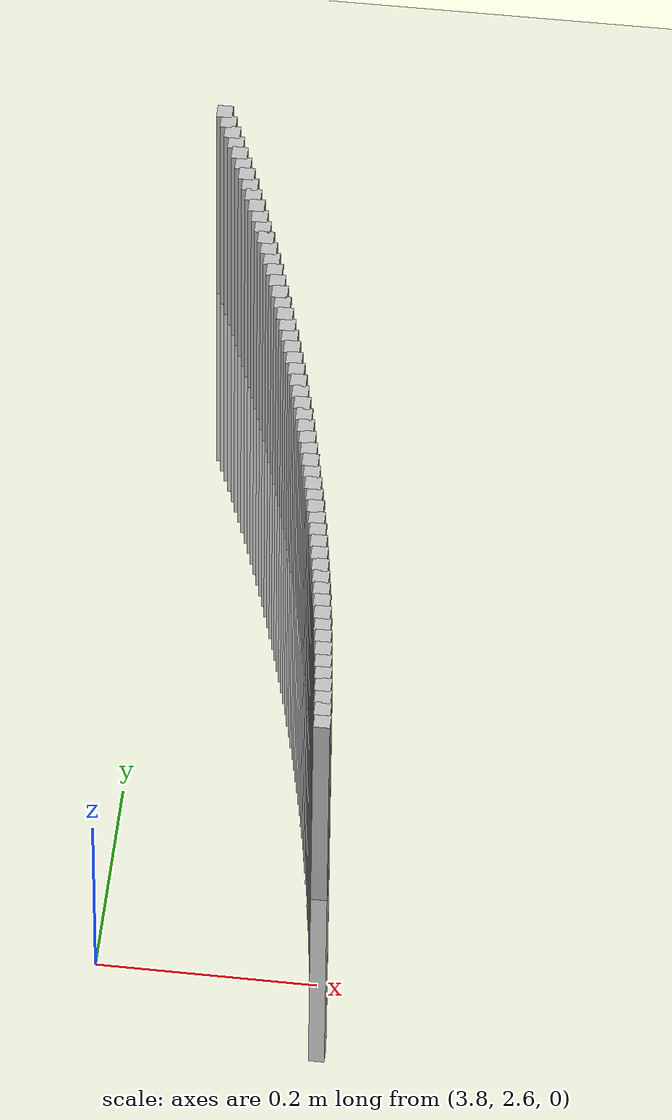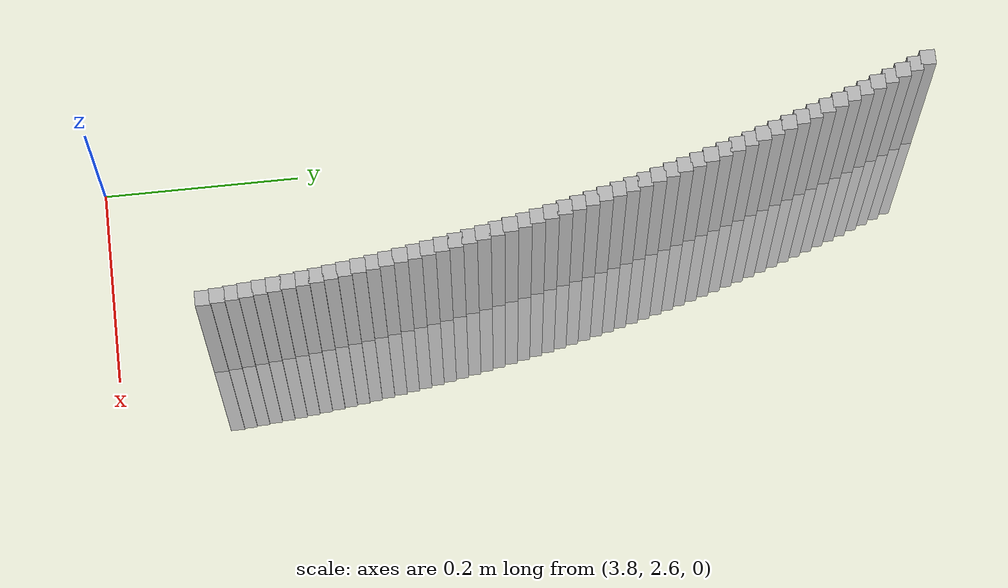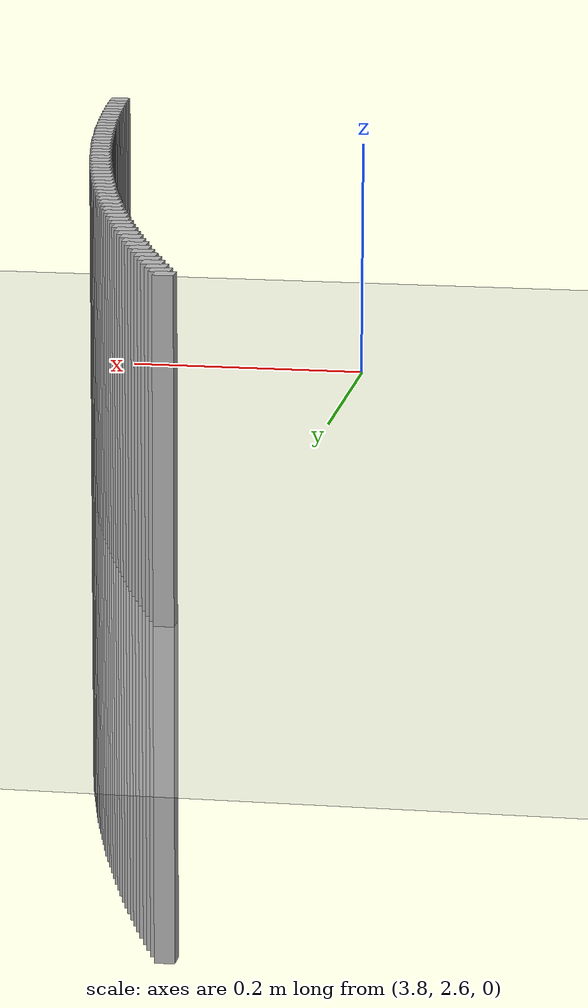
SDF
<sdf version="1.6">
 <world name="base">
  <include><uri>model://sun</uri></include>
  <include><uri>model://ground_plane</uri></include>
  <model name="k404">
   <link name="222_link">
    <collision name="collision_222">
     <pose>3.8198885971332732 3.431727909258391 0 0 -0 0</pose>
     <geometry><box><size>0.015 0.015 0.50</size></box></geometry>
    </collision>
    <visual name="visual_222">
     <pose>3.8198885971332732 3.431727909258391 0 0 -0 0</pose>
     <geometry><box><size>0.015 0.015 0.50</size></box></geometry>
    </visual>
   </link>
   <link name="223_link">
    <collision name="collision_223">
     <pose>3.825029036011102 3.418825327091764 0 0 -0 0</pose>
     <geometry><box><size>0.015 0.015 0.50</size></box></geometry>
    </collision>
    <visual name="visual_223">
     <pose>3.825029036011102 3.418825327091764 0 0 -0 0</pose>
     <geometry><box><size>0.015 0.015 0.50</size></box></geometry>
    </visual>
   </link>
   <link name="224_link">
    <collision name="collision_224">
     <pose>3.8300977149180655 3.405894386191684 0 0 -0 0</pose>
     <geometry><box><size>0.015 0.015 0.50</size></box></geometry>
    </collision>
    <visual name="visual_224">
     <pose>3.8300977149180655 3.405894386191684 0 0 -0 0</pose>
     <geometry><box><size>0.015 0.015 0.50</size></box></geometry>
    </visual>
   </link>
   <link name="225_link">
    <collision name="collision_225">
     <pose>3.835094477413861 3.3929354856602396 0 0 -0 0</pose>
     <geometry><box><size>0.015 0.015 0.50</size></box></geometry>
    </collision>
    <visual name="visual_225">
     <pose>3.835094477413861 3.3929354856602396 0 0 -0 0</pose>
     <geometry><box><size>0.015 0.015 0.50</size></box></geometry>
    </visual>
   </link>
   <link name="226_link">
    <collision name="collision_226">
     <pose>3.840019169277819 3.379949025462467 0 0 -0 0</pose>
     <geometry><box><size>0.015 0.015 0.50</size></box></geometry>
    </collision>
    <visual name="visual_226">
     <pose>3.840019169277819 3.379949025462467 0 0 -0 0</pose>
     <geometry><box><size>0.015 0.015 0.50</size></box></geometry>
    </visual>
   </link>
   <link name="227_link">
    <collision name="collision_227">
     <pose>3.8448716385136685 3.366935406414009 0 0 -0 0</pose>
     <geometry><box><size>0.015 0.015 0.50</size></box></geometry>
    </collision>
    <visual name="visual_227">
     <pose>3.8448716385136685 3.366935406414009 0 0 -0 0</pose>
     <geometry><box><size>0.015 0.015 0.50</size></box></geometry>
    </visual>
   </link>
   <link name="228_link">
    <collision name="collision_228">
     <pose>3.849651735354226 3.3538950301687405 0 0 -0 0</pose>
     <geometry><box><size>0.015 0.015 0.50</size></box></geometry>
    </collision>
    <visual name="visual_228">
     <pose>3.849651735354226 3.3538950301687405 0 0 -0 0</pose>
     <geometry><box><size>0.015 0.015 0.50</size></box></geometry>
    </visual>
   </link>
   <link name="229_link">
    <collision name="collision_229">
     <pose>3.854359312266017 3.3408282992063754 0 0 -0 0</pose>
     <geometry><box><size>0.015 0.015 0.50</size></box></geometry>
    </collision>
    <visual name="visual_229">
     <pose>3.854359312266017 3.3408282992063754 0 0 -0 0</pose>
     <geometry><box><size>0.015 0.015 0.50</size></box></geometry>
    </visual>
   </link>
   <link name="230_link">
    <collision name="collision_230">
     <pose>3.858994223953833 3.327735616820042 0 0 -0 0</pose>
     <geometry><box><size>0.015 0.015 0.50</size></box></geometry>
    </collision>
    <visual name="visual_230">
     <pose>3.858994223953833 3.327735616820042 0 0 -0 0</pose>
     <geometry><box><size>0.015 0.015 0.50</size></box></geometry>
    </visual>
   </link>
   <link name="231_link">
    <collision name="collision_231">
     <pose>3.86355632736521 3.3146173871038354 0 0 -0 0</pose>
     <geometry><box><size>0.015 0.015 0.50</size></box></geometry>
    </collision>
    <visual name="visual_231">
     <pose>3.86355632736521 3.3146173871038354 0 0 -0 0</pose>
     <geometry><box><size>0.015 0.015 0.50</size></box></geometry>
    </visual>
   </link>
   <link name="232_link">
    <collision name="collision_232">
     <pose>3.868045481694851 3.3014740149403483 0 0 -0 0</pose>
     <geometry><box><size>0.015 0.015 0.50</size></box></geometry>
    </collision>
    <visual name="visual_232">
     <pose>3.868045481694851 3.3014740149403483 0 0 -0 0</pose>
     <geometry><box><size>0.015 0.015 0.50</size></box></geometry>
    </visual>
   </link>
   <link name="233_link">
    <collision name="collision_233">
     <pose>3.8724615483889657 3.288305905988172 0 0 -0 0</pose>
     <geometry><box><size>0.015 0.015 0.50</size></box></geometry>
    </collision>
    <visual name="visual_233">
     <pose>3.8724615483889657 3.288305905988172 0 0 -0 0</pose>
     <geometry><box><size>0.015 0.015 0.50</size></box></geometry>
    </visual>
   </link>
   <link name="234_link">
    <collision name="collision_234">
     <pose>3.87680439114955 3.275113466669376 0 0 -0 0</pose>
     <geometry><box><size>0.015 0.015 0.50</size></box></geometry>
    </collision>
    <visual name="visual_234">
     <pose>3.87680439114955 3.275113466669376 0 0 -0 0</pose>
     <geometry><box><size>0.015 0.015 0.50</size></box></geometry>
    </visual>
   </link>
   <link name="235_link">
    <collision name="collision_235">
     <pose>3.8810738759385917 3.2618971041569678 0 0 -0 0</pose>
     <geometry><box><size>0.015 0.015 0.50</size></box></geometry>
    </collision>
    <visual name="visual_235">
     <pose>3.8810738759385917 3.2618971041569678 0 0 -0 0</pose>
     <geometry><box><size>0.015 0.015 0.50</size></box></geometry>
    </visual>
   </link>
   <link name="236_link">
    <collision name="collision_236">
     <pose>3.8852698709822078 3.2486572263623197 0 0 -0 0</pose>
     <geometry><box><size>0.015 0.015 0.50</size></box></geometry>
    </collision>
    <visual name="visual_236">
     <pose>3.8852698709822078 3.2486572263623197 0 0 -0 0</pose>
     <geometry><box><size>0.015 0.015 0.50</size></box></geometry>
    </visual>
   </link>
   <link name="237_link">
    <collision name="collision_237">
     <pose>3.8893922467747117 3.2353942419225854 0 0 -0 0</pose>
     <geometry><box><size>0.015 0.015 0.50</size></box></geometry>
    </collision>
    <visual name="visual_237">
     <pose>3.8893922467747117 3.2353942419225854 0 0 -0 0</pose>
     <geometry><box><size>0.015 0.015 0.50</size></box></geometry>
    </visual>
   </link>
   <link name="238_link">
    <collision name="collision_238">
     <pose>3.8934408760826105 3.222108560188083 0 0 -0 0</pose>
     <geometry><box><size>0.015 0.015 0.50</size></box></geometry>
    </collision>
    <visual name="visual_238">
     <pose>3.8934408760826105 3.222108560188083 0 0 -0 0</pose>
     <geometry><box><size>0.015 0.015 0.50</size></box></geometry>
    </visual>
   </link>
   <link name="239_link">
    <collision name="collision_239">
     <pose>3.89741563394853 3.2088005912096635 0 0 -0 0</pose>
     <geometry><box><size>0.015 0.015 0.50</size></box></geometry>
    </collision>
    <visual name="visual_239">
     <pose>3.89741563394853 3.2088005912096635 0 0 -0 0</pose>
     <geometry><box><size>0.015 0.015 0.50</size></box></geometry>
    </visual>
   </link>
   <link name="240_link">
    <collision name="collision_240">
     <pose>3.901316397695074 3.1954707457260536 0 0 -0 0</pose>
     <geometry><box><size>0.015 0.015 0.50</size></box></geometry>
    </collision>
    <visual name="visual_240">
     <pose>3.901316397695074 3.1954707457260536 0 0 -0 0</pose>
     <geometry><box><size>0.015 0.015 0.50</size></box></geometry>
    </visual>
   </link>
   <link name="241_link">
    <collision name="collision_241">
     <pose>3.9051430469286093 3.1821194351511797 0 0 -0 0</pose>
     <geometry><box><size>0.015 0.015 0.50</size></box></geometry>
    </collision>
    <visual name="visual_241">
     <pose>3.9051430469286093 3.1821194351511797 0 0 -0 0</pose>
     <geometry><box><size>0.015 0.015 0.50</size></box></geometry>
    </visual>
   </link>
   <link name="242_link">
    <collision name="collision_242">
     <pose>3.9088954635429825 3.1687470715614685 0 0 -0 0</pose>
     <geometry><box><size>0.015 0.015 0.50</size></box></geometry>
    </collision>
    <visual name="visual_242">
     <pose>3.9088954635429825 3.1687470715614685 0 0 -0 0</pose>
     <geometry><box><size>0.015 0.015 0.50</size></box></geometry>
    </visual>
   </link>
   <link name="243_link">
    <collision name="collision_243">
     <pose>3.912573531723163 3.1553540676831293 0 0 -0 0</pose>
     <geometry><box><size>0.015 0.015 0.50</size></box></geometry>
    </collision>
    <visual name="visual_243">
     <pose>3.912573531723163 3.1553540676831293 0 0 -0 0</pose>
     <geometry><box><size>0.015 0.015 0.50</size></box></geometry>
    </visual>
   </link>
   <link name="244_link">
    <collision name="collision_244">
     <pose>3.9161771379488206 3.141940836879417 0 0 -0 0</pose>
     <geometry><box><size>0.015 0.015 0.50</size></box></geometry>
    </collision>
    <visual name="visual_244">
     <pose>3.9161771379488206 3.141940836879417 0 0 -0 0</pose>
     <geometry><box><size>0.015 0.015 0.50</size></box></geometry>
    </visual>
   </link>
   <link name="245_link">
    <collision name="collision_245">
     <pose>3.9197061709978267 3.1285077931378713 0 0 -0 0</pose>
     <geometry><box><size>0.015 0.015 0.50</size></box></geometry>
    </collision>
    <visual name="visual_245">
     <pose>3.9197061709978267 3.1285077931378713 0 0 -0 0</pose>
     <geometry><box><size>0.015 0.015 0.50</size></box></geometry>
    </visual>
   </link>
   <link name="246_link">
    <collision name="collision_246">
     <pose>3.923160521949688 3.115055351057541 0 0 -0 0</pose>
     <geometry><box><size>0.015 0.015 0.50</size></box></geometry>
    </collision>
    <visual name="visual_246">
     <pose>3.923160521949688 3.115055351057541 0 0 -0 0</pose>
     <geometry><box><size>0.015 0.015 0.50</size></box></geometry>
    </visual>
   </link>
   <link name="247_link">
    <collision name="collision_247">
     <pose>3.9265400841889093 3.101583925836189 0 0 -0 0</pose>
     <geometry><box><size>0.015 0.015 0.50</size></box></geometry>
    </collision>
    <visual name="visual_247">
     <pose>3.9265400841889093 3.101583925836189 0 0 -0 0</pose>
     <geometry><box><size>0.015 0.015 0.50</size></box></geometry>
    </visual>
   </link>
   <link name="248_link">
    <collision name="collision_248">
     <pose>3.9298447534082817 3.0880939332574737 0 0 -0 0</pose>
     <geometry><box><size>0.015 0.015 0.50</size></box></geometry>
    </collision>
    <visual name="visual_248">
     <pose>3.9298447534082817 3.0880939332574737 0 0 -0 0</pose>
     <geometry><box><size>0.015 0.015 0.50</size></box></geometry>
    </visual>
   </link>
   <link name="249_link">
    <collision name="collision_249">
     <pose>3.933074427612105 3.07458578967812 0 0 -0 0</pose>
     <geometry><box><size>0.015 0.015 0.50</size></box></geometry>
    </collision>
    <visual name="visual_249">
     <pose>3.933074427612105 3.07458578967812 0 0 -0 0</pose>
     <geometry><box><size>0.015 0.015 0.50</size></box></geometry>
    </visual>
   </link>
   <link name="250_link">
    <collision name="collision_250">
     <pose>3.9362290071193318 3.061059912015068 0 0 -0 0</pose>
     <geometry><box><size>0.015 0.015 0.50</size></box></geometry>
    </collision>
    <visual name="visual_250">
     <pose>3.9362290071193318 3.061059912015068 0 0 -0 0</pose>
     <geometry><box><size>0.015 0.015 0.50</size></box></geometry>
    </visual>
   </link>
   <link name="251_link">
    <collision name="collision_251">
     <pose>3.939308394566648 3.047516717732604 0 0 -0 0</pose>
     <geometry><box><size>0.015 0.015 0.50</size></box></geometry>
    </collision>
    <visual name="visual_251">
     <pose>3.939308394566648 3.047516717732604 0 0 -0 0</pose>
     <geometry><box><size>0.015 0.015 0.50</size></box></geometry>
    </visual>
   </link>
   <link name="252_link">
    <collision name="collision_252">
     <pose>3.942312494911475 3.0339566248294756 0 0 -0 0</pose>
     <geometry><box><size>0.015 0.015 0.50</size></box></geometry>
    </collision>
    <visual name="visual_252">
     <pose>3.942312494911475 3.0339566248294756 0 0 -0 0</pose>
     <geometry><box><size>0.015 0.015 0.50</size></box></geometry>
    </visual>
   </link>
   <link name="253_link">
    <collision name="collision_253">
     <pose>3.945241215434906 3.0203800518259927 0 0 -0 0</pose>
     <geometry><box><size>0.015 0.015 0.50</size></box></geometry>
    </collision>
    <visual name="visual_253">
     <pose>3.945241215434906 3.0203800518259927 0 0 -0 0</pose>
     <geometry><box><size>0.015 0.015 0.50</size></box></geometry>
    </visual>
   </link>
   <link name="254_link">
    <collision name="collision_254">
     <pose>3.948094465744564 3.006787417751109 0 0 -0 0</pose>
     <geometry><box><size>0.015 0.015 0.50</size></box></geometry>
    </collision>
    <visual name="visual_254">
     <pose>3.948094465744564 3.006787417751109 0 0 -0 0</pose>
     <geometry><box><size>0.015 0.015 0.50</size></box></geometry>
    </visual>
   </link>
   <link name="255_link">
    <collision name="collision_255">
     <pose>3.9508721577773946 2.9931791421294878 0 0 -0 0</pose>
     <geometry><box><size>0.015 0.015 0.50</size></box></geometry>
    </collision>
    <visual name="visual_255">
     <pose>3.9508721577773946 2.9931791421294878 0 0 -0 0</pose>
     <geometry><box><size>0.015 0.015 0.50</size></box></geometry>
    </visual>
   </link>
   <link name="256_link">
    <collision name="collision_256">
     <pose>3.953574205802383 2.979555644968556 0 0 -0 0</pose>
     <geometry><box><size>0.015 0.015 0.50</size></box></geometry>
    </collision>
    <visual name="visual_256">
     <pose>3.953574205802383 2.979555644968556 0 0 -0 0</pose>
     <geometry><box><size>0.015 0.015 0.50</size></box></geometry>
    </visual>
   </link>
   <link name="257_link">
    <collision name="collision_257">
     <pose>3.9562005264231983 2.965917346745539 0 0 -0 0</pose>
     <geometry><box><size>0.015 0.015 0.50</size></box></geometry>
    </collision>
    <visual name="visual_257">
     <pose>3.9562005264231983 2.965917346745539 0 0 -0 0</pose>
     <geometry><box><size>0.015 0.015 0.50</size></box></geometry>
    </visual>
   </link>
   <link name="258_link">
    <collision name="collision_258">
     <pose>3.9587510385807723 2.952264668394486 0 0 -0 0</pose>
     <geometry><box><size>0.015 0.015 0.50</size></box></geometry>
    </collision>
    <visual name="visual_258">
     <pose>3.9587510385807723 2.952264668394486 0 0 -0 0</pose>
     <geometry><box><size>0.015 0.015 0.50</size></box></geometry>
    </visual>
   </link>
   <link name="259_link">
    <collision name="collision_259">
     <pose>3.9612256635557954 2.9385980312932727 0 0 -0 0</pose>
     <geometry><box><size>0.015 0.015 0.50</size></box></geometry>
    </collision>
    <visual name="visual_259">
     <pose>3.9612256635557954 2.9385980312932727 0 0 -0 0</pose>
     <geometry><box><size>0.015 0.015 0.50</size></box></geometry>
    </visual>
   </link>
   <link name="260_link">
    <collision name="collision_260">
     <pose>3.9636243249711502 2.9249178572506027 0 0 -0 0</pose>
     <geometry><box><size>0.015 0.015 0.50</size></box></geometry>
    </collision>
    <visual name="visual_260">
     <pose>3.9636243249711502 2.9249178572506027 0 0 -0 0</pose>
     <geometry><box><size>0.015 0.015 0.50</size></box></geometry>
    </visual>
   </link>
   <link name="261_link">
    <collision name="collision_261">
     <pose>3.965946948794268 2.911224568492983 0 0 -0 0</pose>
     <geometry><box><size>0.015 0.015 0.50</size></box></geometry>
    </collision>
    <visual name="visual_261">
     <pose>3.965946948794268 2.911224568492983 0 0 -0 0</pose>
     <geometry><box><size>0.015 0.015 0.50</size></box></geometry>
    </visual>
   </link>
   <link name="262_link">
    <collision name="collision_262">
     <pose>3.968193463339412 2.897518587651696 0 0 -0 0</pose>
     <geometry><box><size>0.015 0.015 0.50</size></box></geometry>
    </collision>
    <visual name="visual_262">
     <pose>3.968193463339412 2.897518587651696 0 0 -0 0</pose>
     <geometry><box><size>0.015 0.015 0.50</size></box></geometry>
    </visual>
   </link>
   <link name="263_link">
    <collision name="collision_263">
     <pose>3.970363799269892 2.8838003377497543 0 0 -0 0</pose>
     <geometry><box><size>0.015 0.015 0.50</size></box></geometry>
    </collision>
    <visual name="visual_263">
     <pose>3.970363799269892 2.8838003377497543 0 0 -0 0</pose>
     <geometry><box><size>0.015 0.015 0.50</size></box></geometry>
    </visual>
   </link>
   <link name="264_link">
    <collision name="collision_264">
     <pose>3.972457889600203 2.870070242188843 0 0 -0 0</pose>
     <geometry><box><size>0.015 0.015 0.50</size></box></geometry>
    </collision>
    <visual name="visual_264">
     <pose>3.972457889600203 2.870070242188843 0 0 -0 0</pose>
     <geometry><box><size>0.015 0.015 0.50</size></box></geometry>
    </visual>
   </link>
   <link name="265_link">
    <collision name="collision_265">
     <pose>3.9744756696980947 2.8563287247362537 0 0 -0 0</pose>
     <geometry><box><size>0.015 0.015 0.50</size></box></geometry>
    </collision>
    <visual name="visual_265">
     <pose>3.9744756696980947 2.8563287247362537 0 0 -0 0</pose>
     <geometry><box><size>0.015 0.015 0.50</size></box></geometry>
    </visual>
   </link>
   <link name="266_link">
    <collision name="collision_266">
     <pose>3.976417077286563 2.842576209511805 0 0 -0 0</pose>
     <geometry><box><size>0.015 0.015 0.50</size></box></geometry>
    </collision>
    <visual name="visual_266">
     <pose>3.976417077286563 2.842576209511805 0 0 -0 0</pose>
     <geometry><box><size>0.015 0.015 0.50</size></box></geometry>
    </visual>
   </link>
   <link name="267_link">
    <collision name="collision_267">
     <pose>3.9782820524457754 2.828813120974751 0 0 -0 0</pose>
     <geometry><box><size>0.015 0.015 0.50</size></box></geometry>
    </collision>
    <visual name="visual_267">
     <pose>3.9782820524457754 2.828813120974751 0 0 -0 0</pose>
     <geometry><box><size>0.015 0.015 0.50</size></box></geometry>
    </visual>
   </link>
   <link name="268_link">
    <collision name="collision_268">
     <pose>3.980070537614917 2.815039883910683 0 0 -0 0</pose>
     <geometry><box><size>0.015 0.015 0.50</size></box></geometry>
    </collision>
    <visual name="visual_268">
     <pose>3.980070537614917 2.815039883910683 0 0 -0 0</pose>
     <geometry><box><size>0.015 0.015 0.50</size></box></geometry>
    </visual>
   </link>
   <link name="269_link">
    <collision name="collision_269">
     <pose>3.9817824775939714 2.8012569234184164 0 0 -0 0</pose>
     <geometry><box><size>0.015 0.015 0.50</size></box></geometry>
    </collision>
    <visual name="visual_269">
     <pose>3.9817824775939714 2.8012569234184164 0 0 -0 0</pose>
     <geometry><box><size>0.015 0.015 0.50</size></box></geometry>
    </visual>
   </link>
   <link name="270_link">
    <collision name="collision_270">
     <pose>3.98341781954542 2.787464664896873 0 0 -0 0</pose>
     <geometry><box><size>0.015 0.015 0.50</size></box></geometry>
    </collision>
    <visual name="visual_270">
     <pose>3.98341781954542 2.787464664896873 0 0 -0 0</pose>
     <geometry><box><size>0.015 0.015 0.50</size></box></geometry>
    </visual>
   </link>
   <link name="271_link">
    <collision name="collision_271">
     <pose>3.984976512995876 2.773663534031949 0 0 -0 0</pose>
     <geometry><box><size>0.015 0.015 0.50</size></box></geometry>
    </collision>
    <visual name="visual_271">
     <pose>3.984976512995876 2.773663534031949 0 0 -0 0</pose>
     <geometry><box><size>0.015 0.015 0.50</size></box></geometry>
    </visual>
   </link>
   <link name="272_link">
    <collision name="collision_272">
     <pose>3.986458509837641 2.7598539567833775 0 0 -0 0</pose>
     <geometry><box><size>0.015 0.015 0.50</size></box></geometry>
    </collision>
    <visual name="visual_272">
     <pose>3.986458509837641 2.7598539567833775 0 0 -0 0</pose>
     <geometry><box><size>0.015 0.015 0.50</size></box></geometry>
    </visual>
   </link>
   <link name="273_link">
    <collision name="collision_273">
     <pose>3.987863764330189 2.7460363593715824 0 0 -0 0</pose>
     <geometry><box><size>0.015 0.015 0.50</size></box></geometry>
    </collision>
    <visual name="visual_273">
     <pose>3.987863764330189 2.7460363593715824 0 0 -0 0</pose>
     <geometry><box><size>0.015 0.015 0.50</size></box></geometry>
    </visual>
   </link>
   <link name="274_link">
    <collision name="collision_274">
     <pose>3.989192233101579 2.732211168264523 0 0 -0 0</pose>
     <geometry><box><size>0.015 0.015 0.50</size></box></geometry>
    </collision>
    <visual name="visual_274">
     <pose>3.989192233101579 2.732211168264523 0 0 -0 0</pose>
     <geometry><box><size>0.015 0.015 0.50</size></box></geometry>
    </visual>
   </link>
   <link name="275_link">
    <collision name="collision_275">
     <pose>3.9904438751497944 2.718378810164532 0 0 -0 0</pose>
     <geometry><box><size>0.015 0.015 0.50</size></box></geometry>
    </collision>
    <visual name="visual_275">
     <pose>3.9904438751497944 2.718378810164532 0 0 -0 0</pose>
     <geometry><box><size>0.015 0.015 0.50</size></box></geometry>
    </visual>
   </link>
   <link name="276_link">
    <collision name="collision_276">
     <pose>3.991618651844006 2.7045397119951424 0 0 -0 0</pose>
     <geometry><box><size>0.015 0.015 0.50</size></box></geometry>
    </collision>
    <visual name="visual_276">
     <pose>3.991618651844006 2.7045397119951424 0 0 -0 0</pose>
     <geometry><box><size>0.015 0.015 0.50</size></box></geometry>
    </visual>
   </link>
   <static>true</static>
  </model>
 </world>
</sdf>
